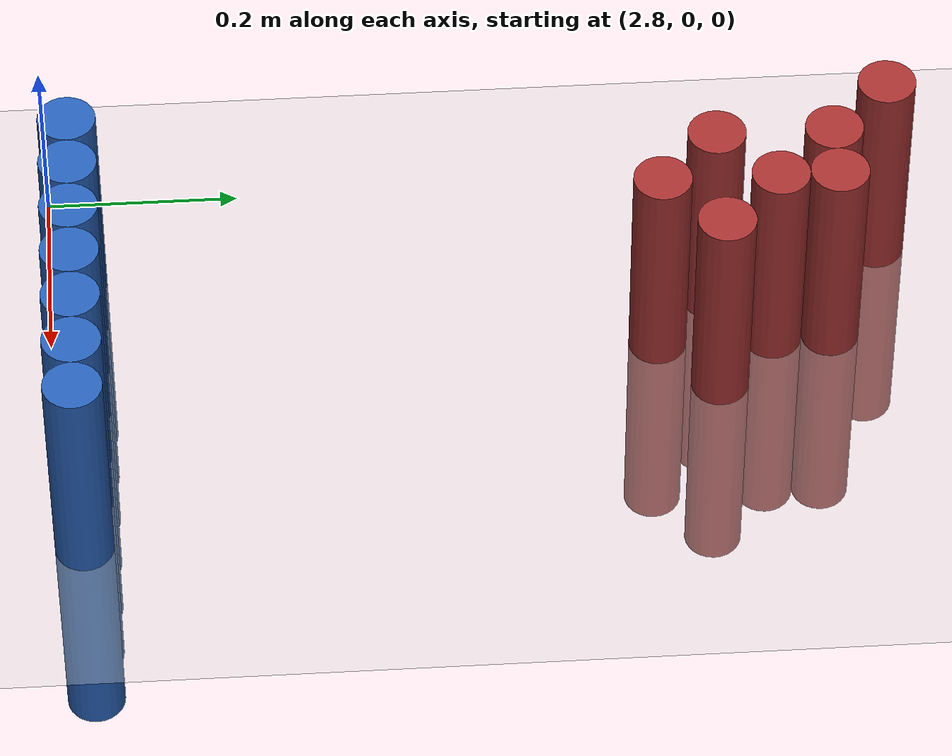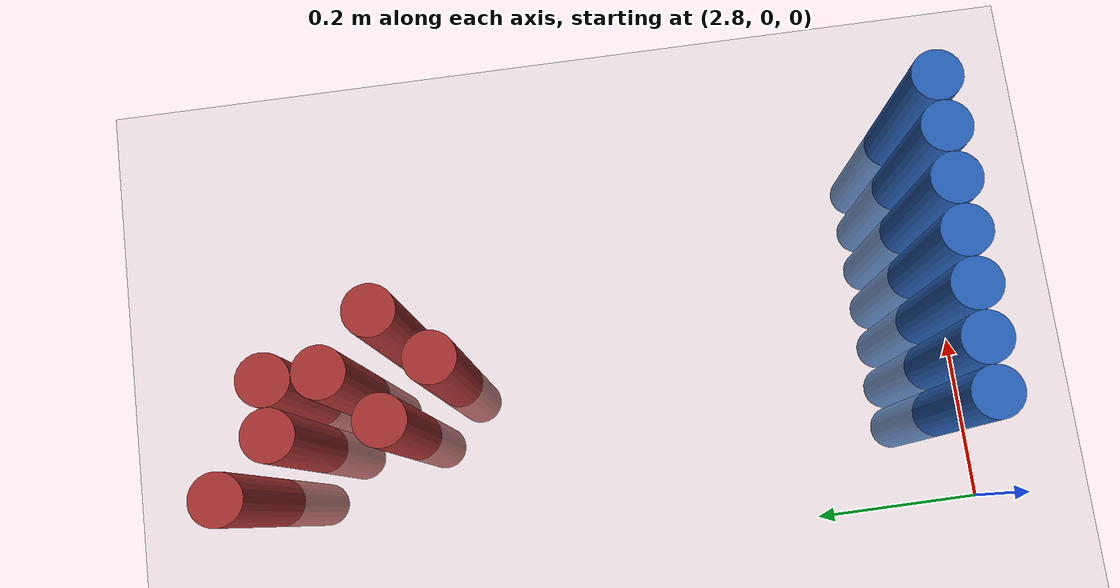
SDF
<sdf version="1.6">
 <world name="default">
  <model name="ground_plane">
   <static>1</static>
   <link name="link">
    <collision name="collision">
     <geometry><plane><normal>0 0 1</normal><size>100 100</size></plane></geometry>
     <surface><friction><ode><mu>100</mu><mu2>50</mu2></ode></friction></surface>
    </collision>
    <visual name="visual">
     <cast_shadows>0</cast_shadows>
     <geometry><plane><normal>0 0 1</normal><size>100 100</size></plane></geometry>
     <material>
      <script><uri>file://media/materials/scripts/gazebo.material</uri><name>Gazebo/Grey</name></script>
     </material>
    </visual>
   </link>
  </model>
  <model name="unit_cylinder_164">
   <static>1</static>
   <pose>2.910000 0.870000 0.000000 0.000000 0.000000 0.000000</pose>
   <link name="link">
    <inertial>
     <mass>1</mass>
     <inertia><ixx>0.145833</ixx><ixy>0</ixy><ixz>0</ixz><iyy>0.145833</iyy><iyz>0</iyz><izz>0.125</izz></inertia>
    </inertial>
    <collision name="collision">
     <geometry><cylinder><radius>0.030000</radius><length>0.5</length></cylinder></geometry>
    </collision>
    <visual name="visual">
     <geometry><cylinder><radius>0.030000</radius><length>0.5</length></cylinder></geometry>
     <material>
      <ambient>0.648000 0.192000 0.192000 1</ambient>
      <diffuse>0.648000 0.192000 0.192000 1</diffuse>
     </material>
     <material>
      <script><name>Gazebo/Grey</name><uri>file://media/materials/scripts/gazebo.material</uri></script>
     </material>
    </visual>
   </link>
  </model>
  <model name="unit_cylinder_170">
   <static>1</static>
   <pose>2.970000 0.810000 0.000000 0.000000 0.000000 0.000000</pose>
   <link name="link">
    <inertial>
     <mass>1</mass>
     <inertia><ixx>0.145833</ixx><ixy>0</ixy><ixz>0</ixz><iyy>0.145833</iyy><iyz>0</iyz><izz>0.125</izz></inertia>
    </inertial>
    <collision name="collision">
     <geometry><cylinder><radius>0.030000</radius><length>0.5</length></cylinder></geometry>
    </collision>
    <visual name="visual">
     <geometry><cylinder><radius>0.030000</radius><length>0.5</length></cylinder></geometry>
     <material>
      <ambient>0.648000 0.192000 0.192000 1</ambient>
      <diffuse>0.648000 0.192000 0.192000 1</diffuse>
     </material>
     <material>
      <script><name>Gazebo/Grey</name><uri>file://media/materials/scripts/gazebo.material</uri></script>
     </material>
    </visual>
   </link>
  </model>
  <model name="unit_cylinder_171">
   <static>1</static>
   <pose>3.030000 0.810000 0.000000 0.000000 0.000000 0.000000</pose>
   <link name="link">
    <inertial>
     <mass>1</mass>
     <inertia><ixx>0.145833</ixx><ixy>0</ixy><ixz>0</ixz><iyy>0.145833</iyy><iyz>0</iyz><izz>0.125</izz></inertia>
    </inertial>
    <collision name="collision">
     <geometry><cylinder><radius>0.030000</radius><length>0.5</length></cylinder></geometry>
    </collision>
    <visual name="visual">
     <geometry><cylinder><radius>0.030000</radius><length>0.5</length></cylinder></geometry>
     <material>
      <ambient>0.648000 0.192000 0.192000 1</ambient>
      <diffuse>0.648000 0.192000 0.192000 1</diffuse>
     </material>
     <material>
      <script><name>Gazebo/Grey</name><uri>file://media/materials/scripts/gazebo.material</uri></script>
     </material>
    </visual>
   </link>
  </model>
  <model name="unit_cylinder_175">
   <static>1</static>
   <pose>3.030000 0.750000 0.000000 0.000000 0.000000 0.000000</pose>
   <link name="link">
    <inertial>
     <mass>1</mass>
     <inertia><ixx>0.145833</ixx><ixy>0</ixy><ixz>0</ixz><iyy>0.145833</iyy><iyz>0</iyz><izz>0.125</izz></inertia>
    </inertial>
    <collision name="collision">
     <geometry><cylinder><radius>0.030000</radius><length>0.5</length></cylinder></geometry>
    </collision>
    <visual name="visual">
     <geometry><cylinder><radius>0.030000</radius><length>0.5</length></cylinder></geometry>
     <material>
      <ambient>0.648000 0.192000 0.192000 1</ambient>
      <diffuse>0.648000 0.192000 0.192000 1</diffuse>
     </material>
     <material>
      <script><name>Gazebo/Grey</name><uri>file://media/materials/scripts/gazebo.material</uri></script>
     </material>
    </visual>
   </link>
  </model>
  <model name="unit_cylinder_176">
   <static>1</static>
   <pose>2.970000 0.690000 0.000000 0.000000 0.000000 0.000000</pose>
   <link name="link">
    <inertial>
     <mass>1</mass>
     <inertia><ixx>0.145833</ixx><ixy>0</ixy><ixz>0</ixz><iyy>0.145833</iyy><iyz>0</iyz><izz>0.125</izz></inertia>
    </inertial>
    <collision name="collision">
     <geometry><cylinder><radius>0.030000</radius><length>0.5</length></cylinder></geometry>
    </collision>
    <visual name="visual">
     <geometry><cylinder><radius>0.030000</radius><length>0.5</length></cylinder></geometry>
     <material>
      <ambient>0.648000 0.192000 0.192000 1</ambient>
      <diffuse>0.648000 0.192000 0.192000 1</diffuse>
     </material>
     <material>
      <script><name>Gazebo/Grey</name><uri>file://media/materials/scripts/gazebo.material</uri></script>
     </material>
    </visual>
   </link>
  </model>
  <model name="unit_cylinder_177">
   <static>1</static>
   <pose>3.090000 0.690000 0.000000 0.000000 0.000000 0.000000</pose>
   <link name="link">
    <inertial>
     <mass>1</mass>
     <inertia><ixx>0.145833</ixx><ixy>0</ixy><ixz>0</ixz><iyy>0.145833</iyy><iyz>0</iyz><izz>0.125</izz></inertia>
    </inertial>
    <collision name="collision">
     <geometry><cylinder><radius>0.030000</radius><length>0.5</length></cylinder></geometry>
    </collision>
    <visual name="visual">
     <geometry><cylinder><radius>0.030000</radius><length>0.5</length></cylinder></geometry>
     <material>
      <ambient>0.648000 0.192000 0.192000 1</ambient>
      <diffuse>0.648000 0.192000 0.192000 1</diffuse>
     </material>
     <material>
      <script><name>Gazebo/Grey</name><uri>file://media/materials/scripts/gazebo.material</uri></script>
     </material>
    </visual>
   </link>
  </model>
  <model name="unit_cylinder_178">
   <static>1</static>
   <pose>3.030000 0.630000 0.000000 0.000000 0.000000 0.000000</pose>
   <link name="link">
    <inertial>
     <mass>1</mass>
     <inertia><ixx>0.145833</ixx><ixy>0</ixy><ixz>0</ixz><iyy>0.145833</iyy><iyz>0</iyz><izz>0.125</izz></inertia>
    </inertial>
    <collision name="collision">
     <geometry><cylinder><radius>0.030000</radius><length>0.5</length></cylinder></geometry>
    </collision>
    <visual name="visual">
     <geometry><cylinder><radius>0.030000</radius><length>0.5</length></cylinder></geometry>
     <material>
      <ambient>0.648000 0.192000 0.192000 1</ambient>
      <diffuse>0.648000 0.192000 0.192000 1</diffuse>
     </material>
     <material>
      <script><name>Gazebo/Grey</name><uri>file://media/materials/scripts/gazebo.material</uri></script>
     </material>
    </visual>
   </link>
  </model>
  <model name="unit_cylinder_210">
   <static>1</static>
   <pose>2.910000 0.030000 0.000000 0.000000 0.000000 0.000000</pose>
   <link name="link">
    <inertial>
     <mass>1</mass>
     <inertia><ixx>0.145833</ixx><ixy>0</ixy><ixz>0</ixz><iyy>0.145833</iyy><iyz>0</iyz><izz>0.125</izz></inertia>
    </inertial>
    <collision name="collision">
     <geometry><cylinder><radius>0.030000</radius><length>0.5</length></cylinder></geometry>
    </collision>
    <visual name="visual">
     <geometry><cylinder><radius>0.030000</radius><length>0.5</length></cylinder></geometry>
     <material>
      <ambient>0.152000 0.379000 0.720000 1</ambient>
      <diffuse>0.152000 0.379000 0.720000 1</diffuse>
     </material>
     <material>
      <script><name>Gazebo/Grey</name><uri>file://media/materials/scripts/gazebo.material</uri></script>
     </material>
    </visual>
   </link>
  </model>
  <model name="unit_cylinder_211">
   <static>1</static>
   <pose>2.970000 0.030000 0.000000 0.000000 0.000000 0.000000</pose>
   <link name="link">
    <inertial>
     <mass>1</mass>
     <inertia><ixx>0.145833</ixx><ixy>0</ixy><ixz>0</ixz><iyy>0.145833</iyy><iyz>0</iyz><izz>0.125</izz></inertia>
    </inertial>
    <collision name="collision">
     <geometry><cylinder><radius>0.030000</radius><length>0.5</length></cylinder></geometry>
    </collision>
    <visual name="visual">
     <geometry><cylinder><radius>0.030000</radius><length>0.5</length></cylinder></geometry>
     <material>
      <ambient>0.152000 0.379000 0.720000 1</ambient>
      <diffuse>0.152000 0.379000 0.720000 1</diffuse>
     </material>
     <material>
      <script><name>Gazebo/Grey</name><uri>file://media/materials/scripts/gazebo.material</uri></script>
     </material>
    </visual>
   </link>
  </model>
  <model name="unit_cylinder_212">
   <static>1</static>
   <pose>3.030000 0.030000 0.000000 0.000000 0.000000 0.000000</pose>
   <link name="link">
    <inertial>
     <mass>1</mass>
     <inertia><ixx>0.145833</ixx><ixy>0</ixy><ixz>0</ixz><iyy>0.145833</iyy><iyz>0</iyz><izz>0.125</izz></inertia>
    </inertial>
    <collision name="collision">
     <geometry><cylinder><radius>0.030000</radius><length>0.5</length></cylinder></geometry>
    </collision>
    <visual name="visual">
     <geometry><cylinder><radius>0.030000</radius><length>0.5</length></cylinder></geometry>
     <material>
      <ambient>0.152000 0.379000 0.720000 1</ambient>
      <diffuse>0.152000 0.379000 0.720000 1</diffuse>
     </material>
     <material>
      <script><name>Gazebo/Grey</name><uri>file://media/materials/scripts/gazebo.material</uri></script>
     </material>
    </visual>
   </link>
  </model>
  <model name="unit_cylinder_213">
   <static>1</static>
   <pose>3.090000 0.030000 0.000000 0.000000 0.000000 0.000000</pose>
   <link name="link">
    <inertial>
     <mass>1</mass>
     <inertia><ixx>0.145833</ixx><ixy>0</ixy><ixz>0</ixz><iyy>0.145833</iyy><iyz>0</iyz><izz>0.125</izz></inertia>
    </inertial>
    <collision name="collision">
     <geometry><cylinder><radius>0.030000</radius><length>0.5</length></cylinder></geometry>
    </collision>
    <visual name="visual">
     <geometry><cylinder><radius>0.030000</radius><length>0.5</length></cylinder></geometry>
     <material>
      <ambient>0.152000 0.379000 0.720000 1</ambient>
      <diffuse>0.152000 0.379000 0.720000 1</diffuse>
     </material>
     <material>
      <script><name>Gazebo/Grey</name><uri>file://media/materials/scripts/gazebo.material</uri></script>
     </material>
    </visual>
   </link>
  </model>
  <model name="unit_cylinder_214">
   <static>1</static>
   <pose>3.150000 0.030000 0.000000 0.000000 0.000000 0.000000</pose>
   <link name="link">
    <inertial>
     <mass>1</mass>
     <inertia><ixx>0.145833</ixx><ixy>0</ixy><ixz>0</ixz><iyy>0.145833</iyy><iyz>0</iyz><izz>0.125</izz></inertia>
    </inertial>
    <collision name="collision">
     <geometry><cylinder><radius>0.030000</radius><length>0.5</length></cylinder></geometry>
    </collision>
    <visual name="visual">
     <geometry><cylinder><radius>0.030000</radius><length>0.5</length></cylinder></geometry>
     <material>
      <ambient>0.152000 0.379000 0.720000 1</ambient>
      <diffuse>0.152000 0.379000 0.720000 1</diffuse>
     </material>
     <material>
      <script><name>Gazebo/Grey</name><uri>file://media/materials/scripts/gazebo.material</uri></script>
     </material>
    </visual>
   </link>
  </model>
  <model name="unit_cylinder_215">
   <static>1</static>
   <pose>3.210000 0.030000 0.000000 0.000000 0.000000 0.000000</pose>
   <link name="link">
    <inertial>
     <mass>1</mass>
     <inertia><ixx>0.145833</ixx><ixy>0</ixy><ixz>0</ixz><iyy>0.145833</iyy><iyz>0</iyz><izz>0.125</izz></inertia>
    </inertial>
    <collision name="collision">
     <geometry><cylinder><radius>0.030000</radius><length>0.5</length></cylinder></geometry>
    </collision>
    <visual name="visual">
     <geometry><cylinder><radius>0.030000</radius><length>0.5</length></cylinder></geometry>
     <material>
      <ambient>0.152000 0.379000 0.720000 1</ambient>
      <diffuse>0.152000 0.379000 0.720000 1</diffuse>
     </material>
     <material>
      <script><name>Gazebo/Grey</name><uri>file://media/materials/scripts/gazebo.material</uri></script>
     </material>
    </visual>
   </link>
  </model>
  <model name="unit_cylinder_216">
   <static>1</static>
   <pose>3.270000 0.030000 0.000000 0.000000 0.000000 0.000000</pose>
   <link name="link">
    <inertial>
     <mass>1</mass>
     <inertia><ixx>0.145833</ixx><ixy>0</ixy><ixz>0</ixz><iyy>0.145833</iyy><iyz>0</iyz><izz>0.125</izz></inertia>
    </inertial>
    <collision name="collision">
     <geometry><cylinder><radius>0.030000</radius><length>0.5</length></cylinder></geometry>
    </collision>
    <visual name="visual">
     <geometry><cylinder><radius>0.030000</radius><length>0.5</length></cylinder></geometry>
     <material>
      <ambient>0.152000 0.379000 0.720000 1</ambient>
      <diffuse>0.152000 0.379000 0.720000 1</diffuse>
     </material>
     <material>
      <script><name>Gazebo/Grey</name><uri>file://media/materials/scripts/gazebo.material</uri></script>
     </material>
    </visual>
   </link>
  </model>
 </world>
</sdf>
